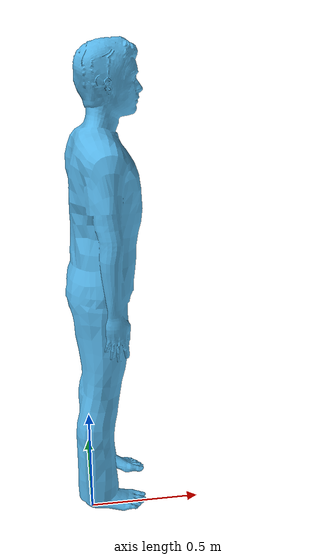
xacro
<?xml version="1.0"?>

<robot xmlns:xacro="http://www.ros.org/wiki/xacro" name="actor">

  <xacro:arg name="robot_name" default=""/>
  <xacro:arg name="tf_prefix" default=""/>

<!-- PLUGINS -->

<gazebo>
  <plugin name="object_controller" filename="libgazebo_ros_planar_move.so">
    <alwaysOn>true</alwaysOn>
    <updateRate>20</updateRate>
    <robotNamespace>$(arg robot_name)</robotNamespace>
    <commandTopic>cmd_vel</commandTopic>
    <odometryTopic>odom</odometryTopic>
    <odometryFrame>$(arg tf_prefix)/odom</odometryFrame>
    <odometryRate>20</odometryRate>
    <robotBaseFrame>$(arg tf_prefix)/base_footprint</robotBaseFrame>
  </plugin>
</gazebo>

<!-- CREATE LINKS -->

<link name="$(arg tf_prefix)/base_footprint"/>

<link name="$(arg tf_prefix)/base_link">
  <inertial>
    <pose>0 -0.1 0.95 0 0 0</pose>
    <mass value="80.0"/>
    <inertia
      ixx="0.2085"
      ixy="0.2385"
      ixz="0.2385"
      iyy="0.2385"
      iyz="0.2385"
      izz="0.2949"
            />
  </inertial>

  <collision name="box">
    <origin xyz="0 0 0.01" rpy="0 0 0"/>
    <geometry>
      <box size="0.5 0.35 0.02"/>
    </geometry>
  </collision>

  <collision name="person">
    <origin xyz="0 0 0.02" rpy="0.04 0 0"/>
    <geometry>
      <mesh filename="model://person_standing/meshes/standing.dae"/>
    </geometry>
  </collision>

  <visual name="visual">
    <origin xyz="0 0 0.02" rpy="0.04 0 1.54"/>
    <geometry>
      <mesh filename="model://person_standing/meshes/standing.dae"/>
    </geometry>
  </visual>
</link>

<gazebo reference="$(arg tf_prefix)/base_link">
  <selfCollide>false</selfCollide>
</gazebo>

<link name="$(arg tf_prefix)/hokuyo"/>

<!-- CREATE JOINTS -->

<!-- For odometry -->
<joint name="$(arg tf_prefix)/base_footprint_to_base_link" type="fixed">
  <parent link="$(arg tf_prefix)/base_footprint"/>
  <child  link="$(arg tf_prefix)/base_link"/>
  <origin xyz="0 0 0.09" rpy="0 0 0"/>
</joint>

<joint name="$(arg tf_prefix)/base_link_to_hokuyo" type="fixed">
  <parent link="$(arg tf_prefix)/base_link"/>
  <child link="$(arg tf_prefix)/hokuyo"/>
  <axis xyz="0 1 0" />
  <origin xyz="0 0 1" rpy="0 0 0"/>
</joint>

<!-- CREATE SENSORS -->

  <gazebo reference="$(arg tf_prefix)/hokuyo">
      <sensor name="head_hokuyo_sensor" type="gpu_ray">
      <pose>0.1 0 0 0 0 0</pose>
      <visualize>true</visualize>
      <update_rate>40</update_rate>
      <always_on>1</always_on>
      <ray>
        <scan>
          <horizontal>
            <samples>720</samples>
            <resolution>1</resolution>
            <min_angle>-1.570796</min_angle>
            <max_angle>1.570796</max_angle>
          </horizontal>
        </scan>
        <range>
          <min>0.5</min>
          <max>30.0</max>
          <resolution>0.01</resolution>
        </range>
        <noise>
          <type>gaussian</type>
          <mean>0.0</mean>
          <stddev>0.01</stddev>
        </noise>
      </ray>
        <plugin name="hokuyo_node" filename="libgazebo_ros_gpu_laser.so">
        <topicName>scan</topicName>
        <frameName>hokuyo</frameName>
        </plugin>
    </sensor>
  </gazebo>

</robot>
